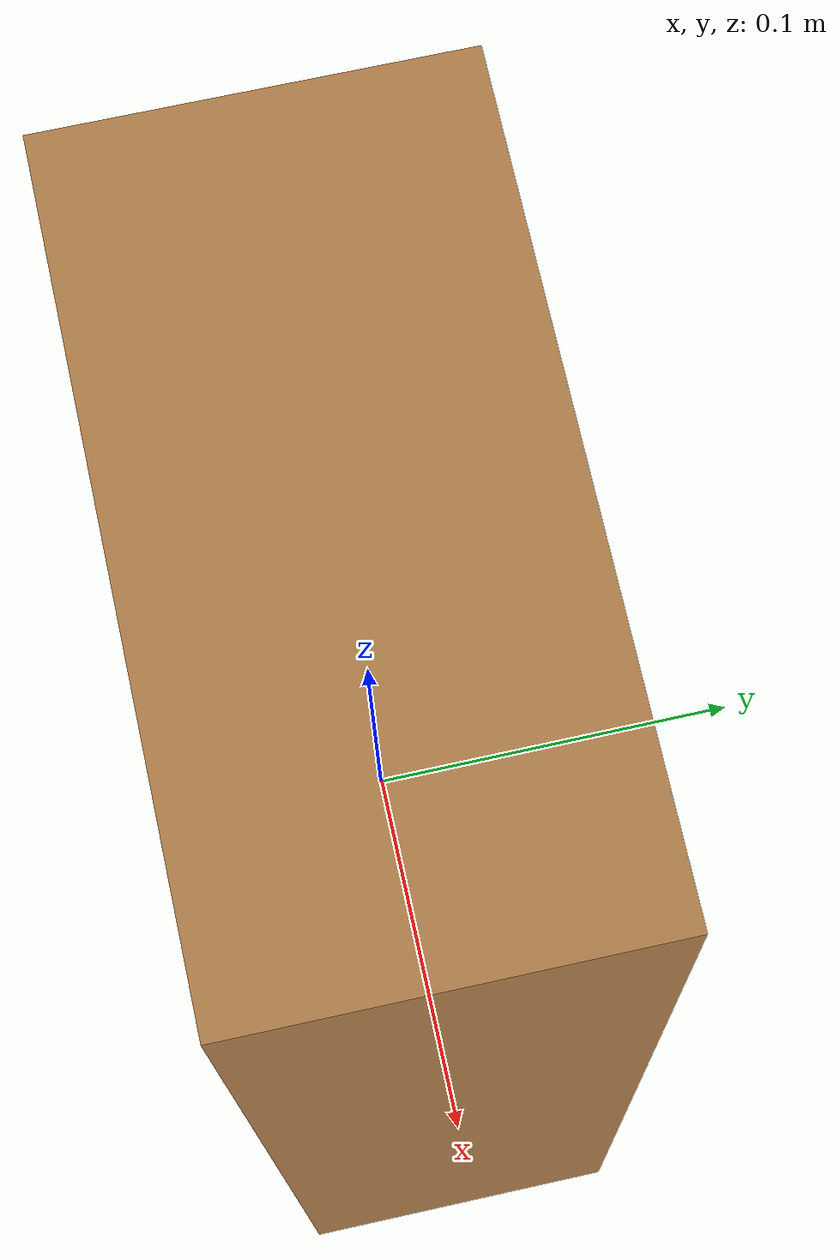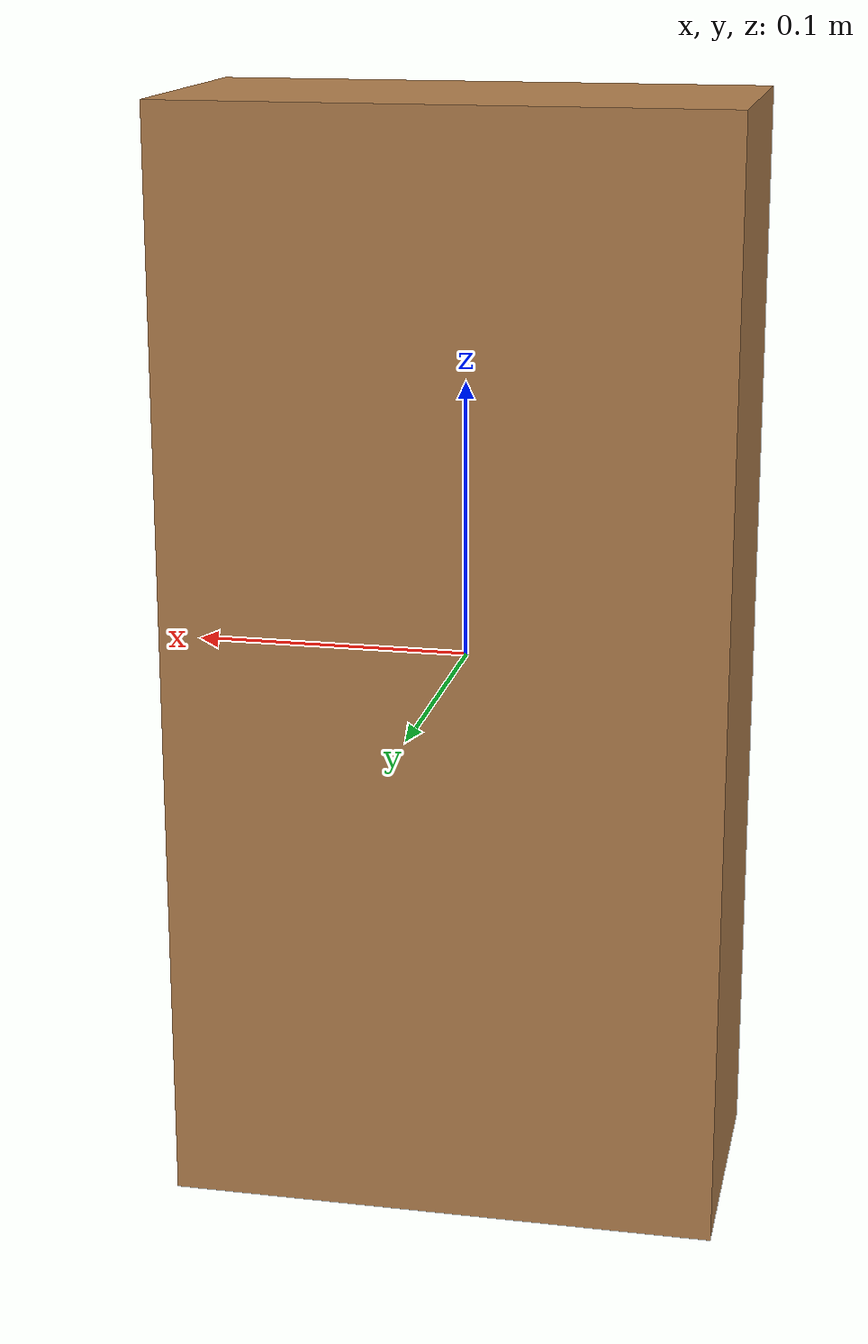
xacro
<?xml version="1.0" ?>
<robot name="camera_projection_mapping" xmlns:xacro="http://ros.org/wiki/xacro">
	<link name="projector_link">
		<visual>
			<origin xyz="0 0 0" rpy="0 0 0" />
			<geometry>
				<box size="0.2 0.1 0.4" />
			</geometry>
		</visual>
		<inertial>
			<mass value="1" />
			<origin xyz="0 0 0" />
			<inertia ixx="0.1" ixy="0.0" ixz="0.0" iyy="0.1" iyz="0.0" izz="0.1" />
		</inertial>
	</link>

	<gazebo>
		<static>true</static>
	</gazebo>

	<gazebo reference="projector_link">
		<material>Gazebo/Wood</material>
		<static>true</static>
		<sensor type="camera" name="virtual_camera">
			<camera name="projector_head">
				<horizontal_fov>0.839669424</horizontal_fov> 				<!-- horizontal field of view in radians -> FOV = 2 arctan(image_width / (2 * focal_lenght)) -->
				<image>
					<width>1280</width>
					<height>800</height>
					<format>R8G8B8</format> 								<!-- pixel format -> L8 | R8G8B8 | B8G8R8 | BAYER_RGGB8 | BAYER_BGGR8 | BAYER_GBRG8 | BAYER_GRBG8 -->
				</image>
				<clip>
					<near>0.05</near>
					<far>25</far>
				</clip>
				<noise>
					<type>gaussian</type>
					<mean>0.0</mean>
					<stddev>0.0</stddev>
				</noise>
			</camera>

			<!-- https://github.com/ros-simulation/gazebo_ros_pkgs/blob/hydro-devel/gazebo_plugins/src/gazebo_ros_camera_utils.cpp -->
			<plugin name="camera_controller" filename="libgazebo_ros_camera.so">
				<alwaysOn>true</alwaysOn>
				<updateRate>30.0</updateRate> 								<!-- if 0 -> unlimited -->
				<cameraName>virtual_camera</cameraName>
				<imageTopicName>image_raw</imageTopicName>
				<cameraInfoTopicName>camera_info</cameraInfoTopicName>
				<frameName>camera_link</frameName>

				<!-- camera intrinsic parameters -->
				<CxPrime>0</CxPrime> 										<!-- if 0 - > (image_width + 1) / 2 -->
				<Cx>0</Cx> 													<!-- if 0 - > (image_width + 1) / 2 -->
				<Cy>0</Cy> 													<!-- if 0 - > (image_height + 1) / 2 -->
				<focalLength>0</focalLength> 								<!-- if 0 - > image_width / (2 * tan(HFOV_radians / 2)) -->
				<hackBaseline>0</hackBaseline>								<!-- Projection/camera matrix Tx=focal_length * hack_baseline -->

				<!-- parameters that will be available in future versions of Gazebo -->
				<distortionK1>0</distortionK1>
				<distortionK2>0</distortionK2>
				<distortionK3>0</distortionK3>
				<distortionT1>0</distortionT1>
				<distortionT2>0</distortionT2>
			</plugin>
		</sensor>
	</gazebo>
</robot>
